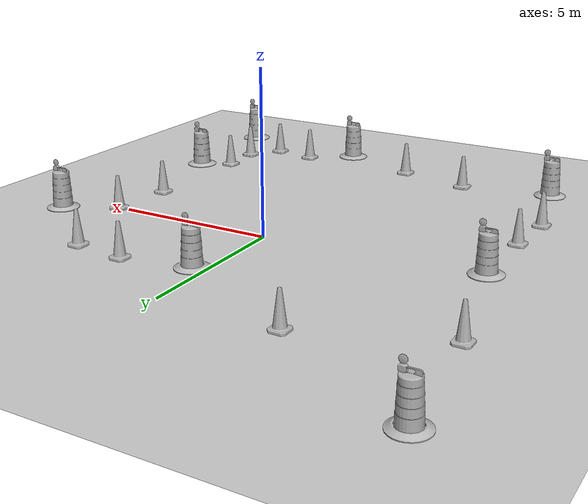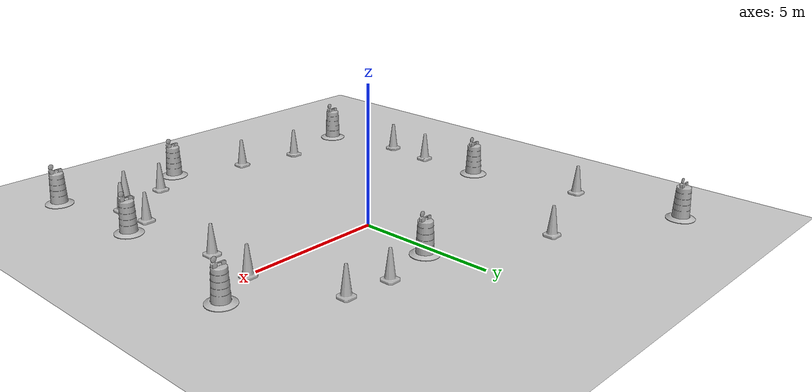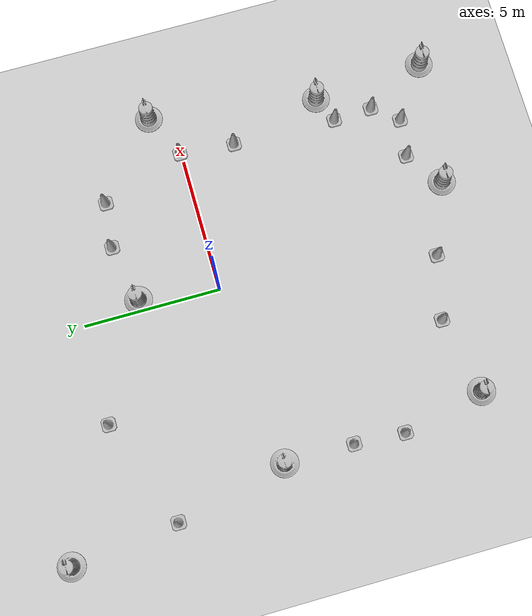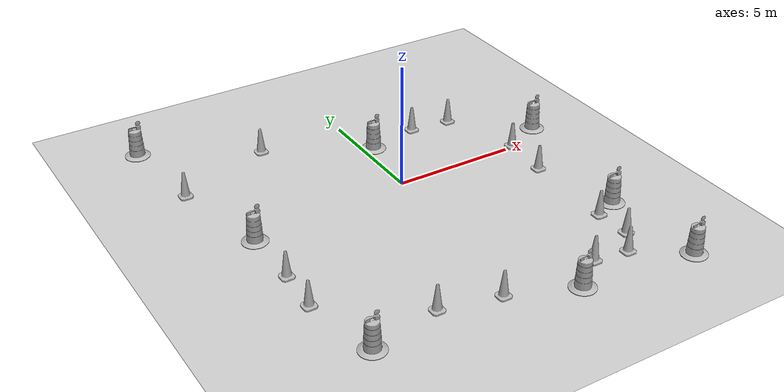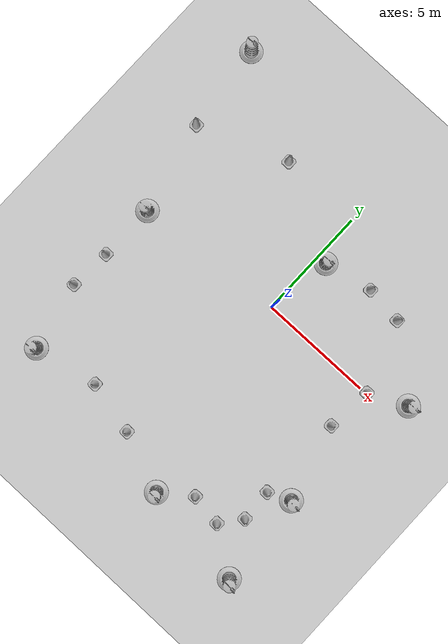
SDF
<sdf version="1.7">
 <world name="default">
  <light name="sun" type="directional">
   <pose>0 0 10 0 -0 0</pose>
   <diffuse>0.8 0.8 0.8 1</diffuse>
   <specular>0.2 0.2 0.2 1</specular>
   <attenuation>
    <range>1000</range>
    <constant>0.9</constant>
    <linear>0.01</linear>
    <quadratic>0.001</quadratic>
   </attenuation>
   <direction>-0.5 0.1 -0.9</direction>
   <spot><inner_angle>0</inner_angle><outer_angle>0</outer_angle><falloff>0</falloff></spot>
  </light>
  <model name="ground_plane">
   <static>1</static>
   <link name="link">
    <collision name="collision">
     <geometry><plane><normal>0 0 1</normal><size>100 100</size></plane></geometry>
     <surface>
      <contact><collide_bitmask>65535</collide_bitmask></contact>
      <friction><ode><mu>100</mu><mu2>50</mu2></ode></friction>
     </surface>
    </collision>
    <visual name="visual">
     <cast_shadows>0</cast_shadows>
     <geometry><plane><normal>0 0 1</normal><size>100 100</size></plane></geometry>
     <material>
      <script><uri>file://media/materials/scripts/gazebo.material</uri><name>Gazebo/Grey</name></script>
     </material>
    </visual>
   </link>
  </model>
  <gravity>0 0 -9.8</gravity>
  <magnetic_field>6e-06 2.3e-05 -4.2e-05</magnetic_field>
  <atmosphere type="adiabatic"/>
  <physics type="ode">
   <max_step_size>0.001</max_step_size>
   <real_time_factor>1</real_time_factor>
   <real_time_update_rate>1000</real_time_update_rate>
  </physics>
  <scene><ambient>0.4 0.4 0.4 1</ambient><background>0.7 0.7 0.7 1</background><shadows>1</shadows></scene>
  <audio><device>default</device></audio>
  <spherical_coordinates>
   <surface_model>EARTH_WGS84</surface_model>
   <latitude_deg>0</latitude_deg>
   <longitude_deg>0</longitude_deg>
   <elevation>0</elevation>
   <heading_deg>0</heading_deg>
  </spherical_coordinates>
  <model name="Construction Barrel">
   <link name="link">
    <inertial>
     <pose>0 0 0.4 0 -0 0</pose>
     <mass>500</mass>
     <inertia><ixx>51.2096</ixx><iyy>51.2096</iyy><izz>25</izz><ixy>0</ixy><ixz>0</ixz><iyz>0</iyz></inertia>
    </inertial>
    <collision name="collision">
     <geometry><mesh><uri>model://construction_barrel/meshes/construction_barrel.dae</uri></mesh></geometry>
    </collision>
    <visual name="visual">
     <geometry><mesh><uri>model://construction_barrel/meshes/construction_barrel.dae</uri></mesh></geometry>
    </visual>
   </link>
   <pose>0.431034 2.90413 0 1e-06 1e-06 -3.3e-05</pose>
  </model>
  <model name="Construction Barrel_0">
   <link name="link">
    <inertial>
     <pose>0 0 0.4 0 -0 0</pose>
     <mass>500</mass>
     <inertia><ixx>51.2096</ixx><iyy>51.2096</iyy><izz>25</izz><ixy>0</ixy><ixz>0</ixz><iyz>0</iyz></inertia>
    </inertial>
    <collision name="collision">
     <geometry><mesh><uri>model://construction_barrel/meshes/construction_barrel.dae</uri></mesh></geometry>
    </collision>
    <visual name="visual">
     <geometry><mesh><uri>model://construction_barrel/meshes/construction_barrel.dae</uri></mesh></geometry>
    </visual>
   </link>
   <pose>-6.60312 -0.561161 0 1e-06 1e-06 -3.2e-05</pose>
  </model>
  <model name="Construction Barrel_1">
   <link name="link">
    <inertial>
     <pose>0 0 0.4 0 -0 0</pose>
     <mass>500</mass>
     <inertia><ixx>51.2096</ixx><iyy>51.2096</iyy><izz>25</izz><ixy>0</ixy><ixz>0</ixz><iyz>0</iyz></inertia>
    </inertial>
    <collision name="collision">
     <geometry><mesh><uri>model://construction_barrel/meshes/construction_barrel.dae</uri></mesh></geometry>
    </collision>
    <visual name="visual">
     <geometry><mesh><uri>model://construction_barrel/meshes/construction_barrel.dae</uri></mesh></geometry>
    </visual>
   </link>
   <pose>1.69416 -8.90978 0 1e-06 1e-06 -3.1e-05</pose>
  </model>
  <model name="Construction Barrel_2">
   <link name="link">
    <inertial>
     <pose>0 0 0.4 0 -0 0</pose>
     <mass>500</mass>
     <inertia><ixx>51.2096</ixx><iyy>51.2096</iyy><izz>25</izz><ixy>0</ixy><ixz>0</ixz><iyz>0</iyz></inertia>
    </inertial>
    <collision name="collision">
     <geometry><mesh><uri>model://construction_barrel/meshes/construction_barrel.dae</uri></mesh></geometry>
    </collision>
    <visual name="visual">
     <geometry><mesh><uri>model://construction_barrel/meshes/construction_barrel.dae</uri></mesh></geometry>
    </visual>
   </link>
   <pose>6.03961 -5.35932 0 1e-06 1e-06 -3e-05</pose>
  </model>
  <model name="Construction Barrel_3">
   <link name="link">
    <inertial>
     <pose>0 0 0.4 0 -0 0</pose>
     <mass>500</mass>
     <inertia><ixx>51.2096</ixx><iyy>51.2096</iyy><izz>25</izz><ixy>0</ixy><ixz>0</ixz><iyz>0</iyz></inertia>
    </inertial>
    <collision name="collision">
     <geometry><mesh><uri>model://construction_barrel/meshes/construction_barrel.dae</uri></mesh></geometry>
    </collision>
    <visual name="visual">
     <geometry><mesh><uri>model://construction_barrel/meshes/construction_barrel.dae</uri></mesh></geometry>
    </visual>
   </link>
   <pose>-6.0601 -7.94529 0 1e-06 1e-06 -2.8e-05</pose>
  </model>
  <model name="Construction Barrel_4">
   <link name="link">
    <inertial>
     <pose>0 0 0.4 0 -0 0</pose>
     <mass>500</mass>
     <inertia><ixx>51.2096</ixx><iyy>51.2096</iyy><izz>25</izz><ixy>0</ixy><ixz>0</ixz><iyz>0</iyz></inertia>
    </inertial>
    <collision name="collision">
     <geometry><mesh><uri>model://construction_barrel/meshes/construction_barrel.dae</uri></mesh></geometry>
    </collision>
    <visual name="visual">
     <geometry><mesh><uri>model://construction_barrel/meshes/construction_barrel.dae</uri></mesh></geometry>
    </visual>
   </link>
   <pose>-8.00576 7.42786 0 1e-06 1e-06 -2.7e-05</pose>
  </model>
  <model name="Construction Barrel_5">
   <link name="link">
    <inertial>
     <pose>0 0 0.4 0 -0 0</pose>
     <mass>500</mass>
     <inertia><ixx>51.2096</ixx><iyy>51.2096</iyy><izz>25</izz><ixy>0</ixy><ixz>0</ixz><iyz>0</iyz></inertia>
    </inertial>
    <collision name="collision">
     <geometry><mesh><uri>model://construction_barrel/meshes/construction_barrel.dae</uri></mesh></geometry>
    </collision>
    <visual name="visual">
     <geometry><mesh><uri>model://construction_barrel/meshes/construction_barrel.dae</uri></mesh></geometry>
    </visual>
   </link>
   <pose>6.97584 0.832613 0 1e-06 1e-06 -2.6e-05</pose>
  </model>
  <model name="Construction Barrel_6">
   <link name="link">
    <inertial>
     <pose>0 0 0.4 0 -0 0</pose>
     <mass>500</mass>
     <inertia><ixx>51.2096</ixx><iyy>51.2096</iyy><izz>25</izz><ixy>0</ixy><ixz>0</ixz><iyz>0</iyz></inertia>
    </inertial>
    <collision name="collision">
     <geometry><mesh><uri>model://construction_barrel/meshes/construction_barrel.dae</uri></mesh></geometry>
    </collision>
    <visual name="visual">
     <geometry><mesh><uri>model://construction_barrel/meshes/construction_barrel.dae</uri></mesh></geometry>
    </visual>
   </link>
   <pose>6.3203 -9.46126 0 1e-06 1e-06 -2.5e-05</pose>
  </model>
  <model name="Construction Cone">
   <link name="link">
    <collision name="collision">
     <geometry>
      <mesh><scale>10 10 10</scale><uri>model://construction_cone/meshes/construction_cone.dae</uri></mesh>
     </geometry>
    </collision>
    <visual name="visual">
     <geometry>
      <mesh><scale>10 10 10</scale><uri>model://construction_cone/meshes/construction_cone.dae</uri></mesh>
     </geometry>
    </visual>
    <inertial>
     <inertia><ixx>1</ixx><ixy>0</ixy><ixz>0</ixz><iyy>1</iyy><iyz>0</iyz><izz>1</izz></inertia>
     <mass>1</mass>
    </inertial>
   </link>
   <pose>-7.56349 3.519 -1e-05 0 -0 0</pose>
  </model>
  <model name="Construction Cone_0">
   <link name="link">
    <collision name="collision">
     <geometry>
      <mesh><scale>10 10 10</scale><uri>model://construction_cone/meshes/construction_cone.dae</uri></mesh>
     </geometry>
    </collision>
    <visual name="visual">
     <geometry>
      <mesh><scale>10 10 10</scale><uri>model://construction_cone/meshes/construction_cone.dae</uri></mesh>
     </geometry>
    </visual>
    <inertial>
     <inertia><ixx>1</ixx><ixy>0</ixy><ixz>0</ixz><iyy>1</iyy><iyz>0</iyz><izz>1</izz></inertia>
     <mass>1</mass>
    </inertial>
   </link>
   <pose>-3.62914 5.0175 -0 0 -0 0</pose>
  </model>
  <model name="Construction Cone_1">
   <link name="link">
    <collision name="collision">
     <geometry>
      <mesh><scale>10 10 10</scale><uri>model://construction_cone/meshes/construction_cone.dae</uri></mesh>
     </geometry>
    </collision>
    <visual name="visual">
     <geometry>
      <mesh><scale>10 10 10</scale><uri>model://construction_cone/meshes/construction_cone.dae</uri></mesh>
     </geometry>
    </visual>
    <inertial>
     <inertia><ixx>1</ixx><ixy>0</ixy><ixz>0</ixz><iyy>1</iyy><iyz>0</iyz><izz>1</izz></inertia>
     <mass>1</mass>
    </inertial>
   </link>
   <pose>-6.61473 -3.0877 -0 0 -0 0</pose>
  </model>
  <model name="Construction Cone_2">
   <link name="link">
    <collision name="collision">
     <geometry>
      <mesh><scale>10 10 10</scale><uri>model://construction_cone/meshes/construction_cone.dae</uri></mesh>
     </geometry>
    </collision>
    <visual name="visual">
     <geometry>
      <mesh><scale>10 10 10</scale><uri>model://construction_cone/meshes/construction_cone.dae</uri></mesh>
     </geometry>
    </visual>
    <inertial>
     <inertia><ixx>1</ixx><ixy>0</ixy><ixz>0</ixz><iyy>1</iyy><iyz>0</iyz><izz>1</izz></inertia>
     <mass>1</mass>
    </inertial>
   </link>
   <pose>-6.72775 -4.93243 -0 0 -0 0</pose>
  </model>
  <model name="Construction Cone_3">
   <link name="link">
    <collision name="collision">
     <geometry>
      <mesh><scale>10 10 10</scale><uri>model://construction_cone/meshes/construction_cone.dae</uri></mesh>
     </geometry>
    </collision>
    <visual name="visual">
     <geometry>
      <mesh><scale>10 10 10</scale><uri>model://construction_cone/meshes/construction_cone.dae</uri></mesh>
     </geometry>
    </visual>
    <inertial>
     <inertia><ixx>1</ixx><ixy>0</ixy><ixz>0</ixz><iyy>1</iyy><iyz>0</iyz><izz>1</izz></inertia>
     <mass>1</mass>
    </inertial>
   </link>
   <pose>-3.23018 -7.3685 -0 0 -1e-06 0</pose>
  </model>
  <model name="Construction Cone_4">
   <link name="link">
    <collision name="collision">
     <geometry>
      <mesh><scale>10 10 10</scale><uri>model://construction_cone/meshes/construction_cone.dae</uri></mesh>
     </geometry>
    </collision>
    <visual name="visual">
     <geometry>
      <mesh><scale>10 10 10</scale><uri>model://construction_cone/meshes/construction_cone.dae</uri></mesh>
     </geometry>
    </visual>
    <inertial>
     <inertia><ixx>1</ixx><ixy>0</ixy><ixz>0</ixz><iyy>1</iyy><iyz>0</iyz><izz>1</izz></inertia>
     <mass>1</mass>
    </inertial>
   </link>
   <pose>-0.903635 -7.90267 -0 0 -0 0</pose>
  </model>
  <model name="Construction Cone_5">
   <link name="link">
    <collision name="collision">
     <geometry>
      <mesh><scale>10 10 10</scale><uri>model://construction_cone/meshes/construction_cone.dae</uri></mesh>
     </geometry>
    </collision>
    <visual name="visual">
     <geometry>
      <mesh><scale>10 10 10</scale><uri>model://construction_cone/meshes/construction_cone.dae</uri></mesh>
     </geometry>
    </visual>
    <inertial>
     <inertia><ixx>1</ixx><ixy>0</ixy><ixz>0</ixz><iyy>1</iyy><iyz>0</iyz><izz>1</izz></inertia>
     <mass>1</mass>
    </inertial>
   </link>
   <pose>3.0007 -7.93603 -1e-05 0 -0 0</pose>
  </model>
  <model name="Construction Cone_6">
   <link name="link">
    <collision name="collision">
     <geometry>
      <mesh><scale>10 10 10</scale><uri>model://construction_cone/meshes/construction_cone.dae</uri></mesh>
     </geometry>
    </collision>
    <visual name="visual">
     <geometry>
      <mesh><scale>10 10 10</scale><uri>model://construction_cone/meshes/construction_cone.dae</uri></mesh>
     </geometry>
    </visual>
    <inertial>
     <inertia><ixx>1</ixx><ixy>0</ixy><ixz>0</ixz><iyy>1</iyy><iyz>0</iyz><izz>1</izz></inertia>
     <mass>1</mass>
    </inertial>
   </link>
   <pose>4.40205 -8.13394 -0 0 -0 0</pose>
  </model>
  <model name="Construction Cone_7">
   <link name="link">
    <collision name="collision">
     <geometry>
      <mesh><scale>10 10 10</scale><uri>model://construction_cone/meshes/construction_cone.dae</uri></mesh>
     </geometry>
    </collision>
    <visual name="visual">
     <geometry>
      <mesh><scale>10 10 10</scale><uri>model://construction_cone/meshes/construction_cone.dae</uri></mesh>
     </geometry>
    </visual>
    <inertial>
     <inertia><ixx>1</ixx><ixy>0</ixy><ixz>0</ixz><iyy>1</iyy><iyz>0</iyz><izz>1</izz></inertia>
     <mass>1</mass>
    </inertial>
   </link>
   <pose>5.13119 -7.21126 -3e-06 0 -0 0</pose>
  </model>
  <model name="Construction Cone_8">
   <link name="link">
    <collision name="collision">
     <geometry>
      <mesh><scale>10 10 10</scale><uri>model://construction_cone/meshes/construction_cone.dae</uri></mesh>
     </geometry>
    </collision>
    <visual name="visual">
     <geometry>
      <mesh><scale>10 10 10</scale><uri>model://construction_cone/meshes/construction_cone.dae</uri></mesh>
     </geometry>
    </visual>
    <inertial>
     <inertia><ixx>1</ixx><ixy>0</ixy><ixz>0</ixz><iyy>1</iyy><iyz>0</iyz><izz>1</izz></inertia>
     <mass>1</mass>
    </inertial>
   </link>
   <pose>5.06156 -5.78117 -0 0 -0 0</pose>
  </model>
  <model name="Construction Cone_9">
   <link name="link">
    <collision name="collision">
     <geometry>
      <mesh><scale>10 10 10</scale><uri>model://construction_cone/meshes/construction_cone.dae</uri></mesh>
     </geometry>
    </collision>
    <visual name="visual">
     <geometry>
      <mesh><scale>10 10 10</scale><uri>model://construction_cone/meshes/construction_cone.dae</uri></mesh>
     </geometry>
    </visual>
    <inertial>
     <inertia><ixx>1</ixx><ixy>0</ixy><ixz>0</ixz><iyy>1</iyy><iyz>0</iyz><izz>1</izz></inertia>
     <mass>1</mass>
    </inertial>
   </link>
   <pose>5.16398 -1.95395 -0 0 -0 0</pose>
  </model>
  <model name="Construction Cone_10">
   <link name="link">
    <collision name="collision">
     <geometry>
      <mesh><scale>10 10 10</scale><uri>model://construction_cone/meshes/construction_cone.dae</uri></mesh>
     </geometry>
    </collision>
    <visual name="visual">
     <geometry>
      <mesh><scale>10 10 10</scale><uri>model://construction_cone/meshes/construction_cone.dae</uri></mesh>
     </geometry>
    </visual>
    <inertial>
     <inertia><ixx>1</ixx><ixy>0</ixy><ixz>0</ixz><iyy>1</iyy><iyz>0</iyz><izz>1</izz></inertia>
     <mass>1</mass>
    </inertial>
   </link>
   <pose>5.35007 0.059364 -0 0 -0 0</pose>
  </model>
  <model name="Construction Cone_11">
   <link name="link">
    <collision name="collision">
     <geometry>
      <mesh><scale>10 10 10</scale><uri>model://construction_cone/meshes/construction_cone.dae</uri></mesh>
     </geometry>
    </collision>
    <visual name="visual">
     <geometry>
      <mesh><scale>10 10 10</scale><uri>model://construction_cone/meshes/construction_cone.dae</uri></mesh>
     </geometry>
    </visual>
    <inertial>
     <inertia><ixx>1</ixx><ixy>0</ixy><ixz>0</ixz><iyy>1</iyy><iyz>0</iyz><izz>1</izz></inertia>
     <mass>1</mass>
    </inertial>
   </link>
   <pose>2.55875 3.34184 -1e-05 0 1e-06 0</pose>
  </model>
  <model name="Construction Cone_12">
   <link name="link">
    <collision name="collision">
     <geometry>
      <mesh><scale>10 10 10</scale><uri>model://construction_cone/meshes/construction_cone.dae</uri></mesh>
     </geometry>
    </collision>
    <visual name="visual">
     <geometry>
      <mesh><scale>10 10 10</scale><uri>model://construction_cone/meshes/construction_cone.dae</uri></mesh>
     </geometry>
    </visual>
    <inertial>
     <inertia><ixx>1</ixx><ixy>0</ixy><ixz>0</ixz><iyy>1</iyy><iyz>0</iyz><izz>1</izz></inertia>
     <mass>1</mass>
    </inertial>
   </link>
   <pose>4.23849 3.15407 -0 0 -0 0</pose>
  </model>
 </world>
</sdf>
